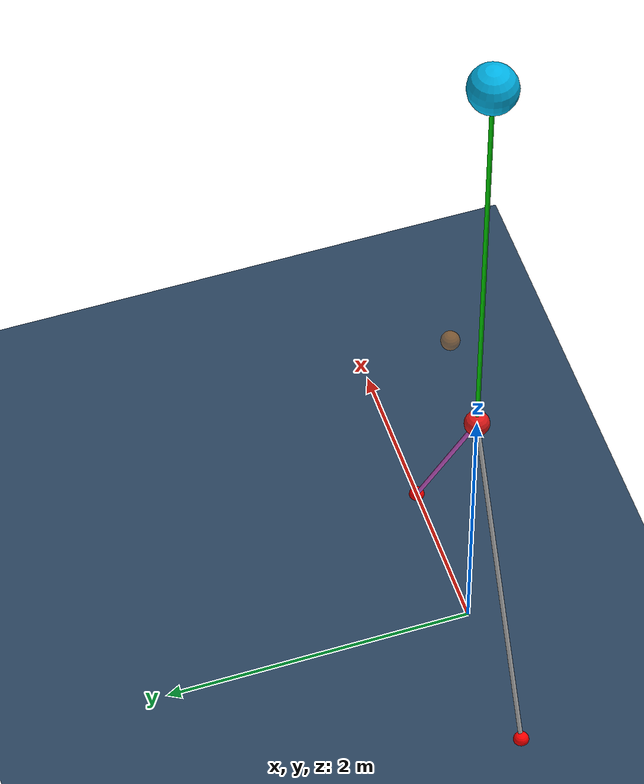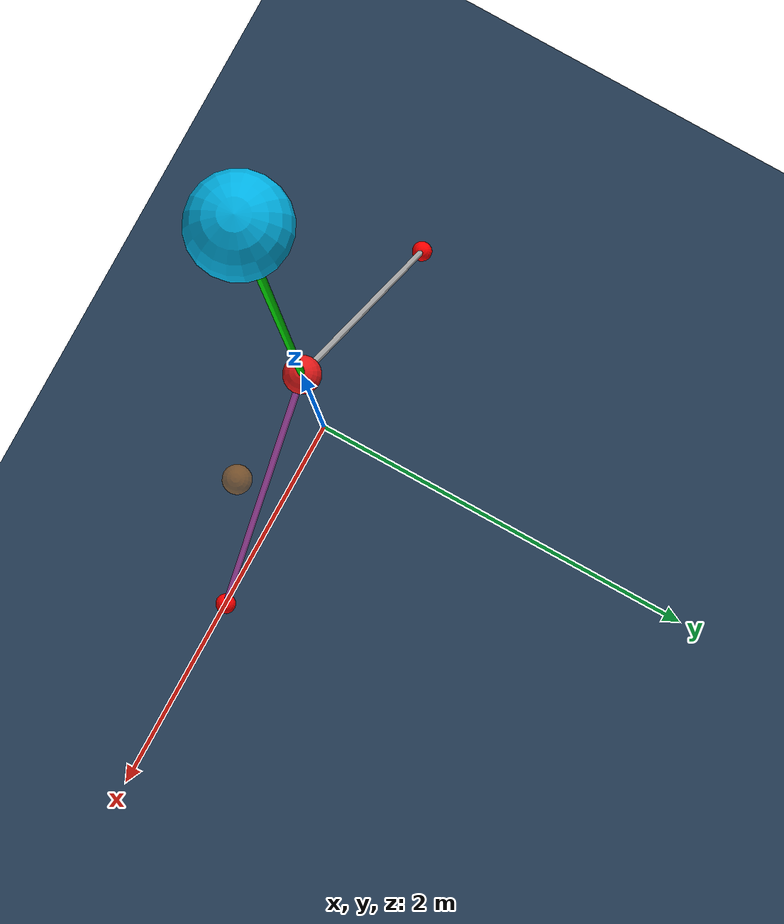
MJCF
<mujoco model="section_3_1_3_two_ground_cables_system">
    <option gravity="0 0 -9.81" timestep="0.002"/>

    <asset>
        <texture name="grid" type="2d" builtin="checker" rgb1=".1 .2 .3" rgb2=".2 .3 .4" width="300" height="300"/>
        <material name="grid_mat" texture="grid" texrepeat="10 10"/>
    </asset>

    <worldbody>
        <light pos="0 0 10" dir="0 0 -1"/>
        <geom type="plane" size="10 10 0.1" material="grid_mat"/>

        <body name="target_marker" mocap="true" pos="0.5 0.0 2.2">
            <geom type="sphere" size="0.06" rgba="1 0.5 0 0.4" contype="0" conaffinity="0"/>
        </body>

        <site name="ground_anchor_1" pos="-1.0 0 0" size="0.05" rgba="1 0 0 1"/>
        <site name="ground_anchor_2" pos="1.0 0 0" size="0.05" rgba="1 0 0 1"/>

        <body name="payload" pos="0 0 2.0">
            <freejoint name="payload_joint"/>
            <geom type="sphere" size="0.08" rgba="0.9 0.1 0.1 1" mass="1.0"/>
            <site name="payload_top" pos="0 0 0" size="0.01" rgba="1 1 1 1"/>
            <site name="payload_bottom_left" pos="0 0 0" size="0.01" rgba="1 1 1 1"/>
            <site name="payload_bottom_right" pos="0 0 0" size="0.01" rgba="1 1 1 1"/>
        </body>

        <body name="drone" pos="0 0 5.0">
            <freejoint name="drone_joint"/>
            <geom type="sphere" size="0.15" rgba="0 0.7 0.9 1" mass="2.0"/>
            <site name="drone_attachment" pos="0 0 0" size="0.02" rgba="1 1 0 1"/>
        </body>
    </worldbody>

    <tendon>
        <spatial name="cable_2" limited="true" range="0 3.0" width="0.015" rgba="0.7 0.7 0.7 1">
            <site site="ground_anchor_1"/>
            <site site="payload_bottom_left"/>
        </spatial>

        <spatial name="cable_3" limited="true" range="0 3.0" width="0.015" rgba="0.7 0.3 0.7 1">
            <site site="ground_anchor_2"/>
            <site site="payload_bottom_right"/>
        </spatial>

        <spatial name="cable_1" limited="true" range="0 4.0" width="0.015" rgba="0 0.8 0 1">
            <site site="payload_top"/>
            <site site="drone_attachment"/>
        </spatial>
    </tendon>
</mujoco>
